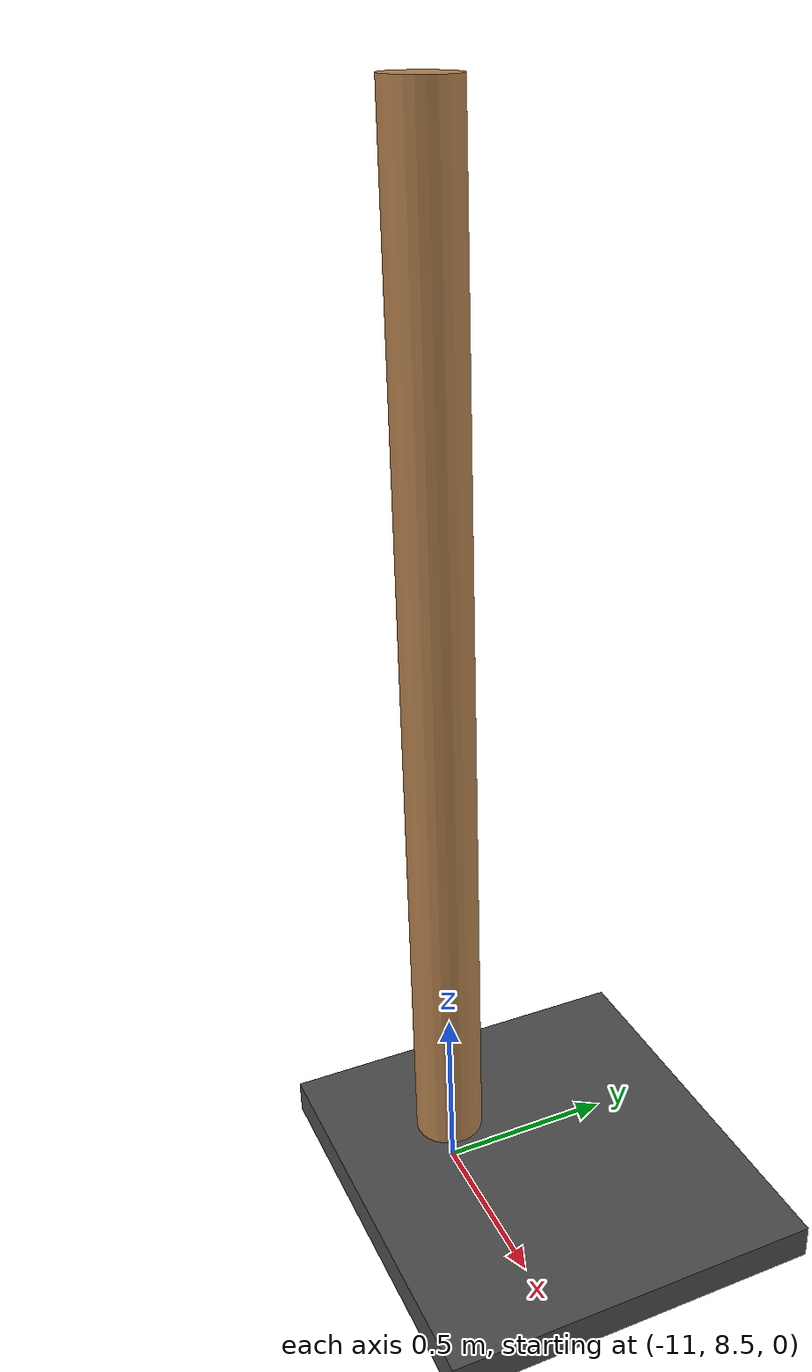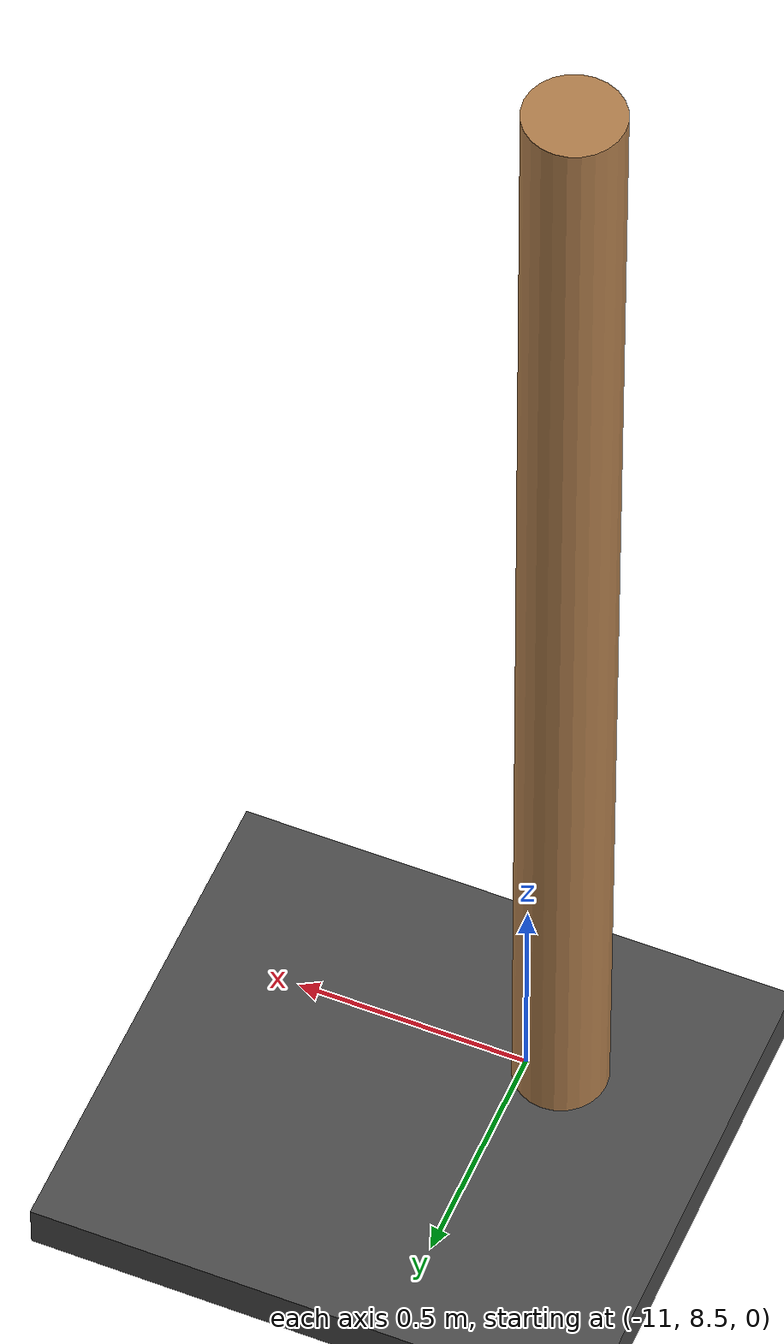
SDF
<sdf version="1.6">
 <world name="default">
  <light name="sun" type="directional">
   <pose>0 0 10 0 -0 0</pose>
   <diffuse>0.8 0.8 0.8 1</diffuse>
   <specular>0.1 0.1 0.1 1</specular>
   <attenuation>
    <range>1000</range>
    <constant>0.9</constant>
    <linear>0.01</linear>
    <quadratic>0.001</quadratic>
   </attenuation>
   <direction>-0.5 0.5 -1</direction>
  </light>
  <model name="asphalt_plane">
   <static>1</static>
   <link name="link">
    <collision name="collision"><geometry><box><size>42.4866 44.6464 0.1</size></box></geometry></collision>
    <visual name="visual">
     <cast_shadows>0</cast_shadows>
     <geometry><box><size>42.4866 44.6464 0.1</size></box></geometry>
     <material>
      <script>
       <uri>model://asphalt_plane/materials/scripts</uri>
       <uri>model://asphalt_plane/materials/textures</uri>
       <name>vrc/asphalt</name>
      </script>
     </material>
    </visual>
   </link>
  </model>
  <gravity>0 0 -9.8</gravity>
  <magnetic_field>6e-06 2.3e-05 -4.2e-05</magnetic_field>
  <atmosphere type="adiabatic"/>
  <physics name="default_physics" default="0" type="ode">
   <max_step_size>0.01</max_step_size>
   <real_time_factor>1</real_time_factor>
   <real_time_update_rate>100</real_time_update_rate>
  </physics>
  <scene><ambient>0.4 0.4 0.4 1</ambient><background>0.7 0.7 0.7 1</background><shadows>1</shadows></scene>
  <spherical_coordinates>
   <surface_model>EARTH_WGS84</surface_model>
   <latitude_deg>0</latitude_deg>
   <longitude_deg>0</longitude_deg>
   <elevation>0</elevation>
   <heading_deg>0</heading_deg>
  </spherical_coordinates>
  <model name="wooden_cylinder1_clone_0">
   <pose>-11.0868 8.52775 -6.1e-05 0 -0 0</pose>
   <link name="wooden_cylinder::link_0">
    <pose>0 0 1.5 0 -0 0</pose>
    <inertial>
     <mass>1</mass>
     <inertia><ixx>0.145833</ixx><ixy>0</ixy><ixz>0</ixz><iyy>0.145833</iyy><iyz>0</iyz><izz>0.125</izz></inertia>
    </inertial>
    <visual name="visual">
     <geometry><cylinder><radius>0.1</radius><length>3</length></cylinder></geometry>
     <material>
      <lighting>1</lighting>
      <script><uri>file://media/materials/scripts/gazebo.material</uri><name>Gazebo/Wood</name></script>
      <ambient>0.3 0.3 0.3 1</ambient>
      <diffuse>0.7 0.7 0.7 1</diffuse>
      <specular>0.01 0.01 0.01 1</specular>
      <emissive>0 0 0 1</emissive>
      <shader type="vertex"><normal_map>__default__</normal_map></shader>
     </material>
    </visual>
    <collision name="collision">
     <geometry><cylinder><radius>0.1</radius><length>3</length></cylinder></geometry>
     <surface>
      <friction>
       <ode><mu>1</mu><mu2>1</mu2><fdir1>0 0 0</fdir1><slip1>0</slip1><slip2>0</slip2></ode>
       <torsional>
        <coefficient>1</coefficient>
        <patch_radius>0</patch_radius>
        <surface_radius>0</surface_radius>
        <use_patch_radius>1</use_patch_radius>
        <ode><slip>0</slip></ode>
       </torsional>
      </friction>
      <bounce><restitution_coefficient>0</restitution_coefficient><threshold>1e+06</threshold></bounce>
      <contact>
       <collide_without_contact>0</collide_without_contact>
       <collide_without_contact_bitmask>1</collide_without_contact_bitmask>
       <collide_bitmask>1</collide_bitmask>
       <ode>
        <soft_cfm>0</soft_cfm>
        <soft_erp>0.2</soft_erp>
        <kp>1e+13</kp>
        <kd>1</kd>
        <max_vel>0.01</max_vel>
        <min_depth>0</min_depth>
       </ode>
       <bullet>
        <split_impulse>1</split_impulse>
        <split_impulse_penetration_threshold>-0.01</split_impulse_penetration_threshold>
        <soft_cfm>0</soft_cfm>
        <soft_erp>0.2</soft_erp>
        <kp>1e+13</kp>
        <kd>1</kd>
       </bullet>
      </contact>
     </surface>
    </collision>
   </link>
   <static>1</static>
  </model>
 </world>
</sdf>
